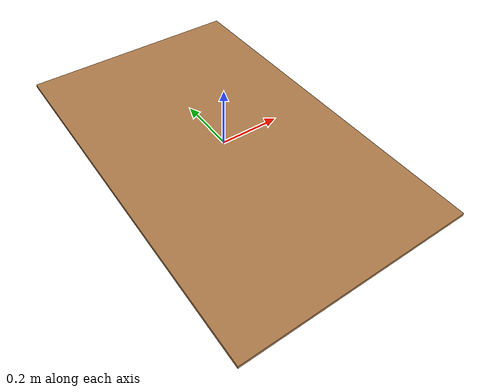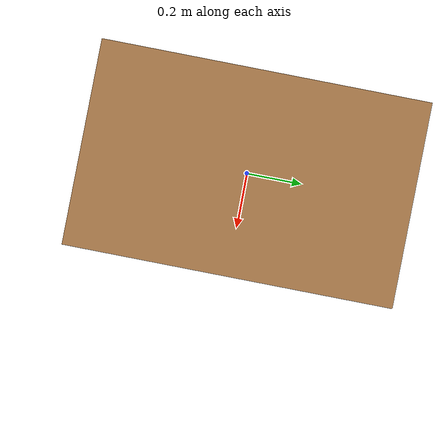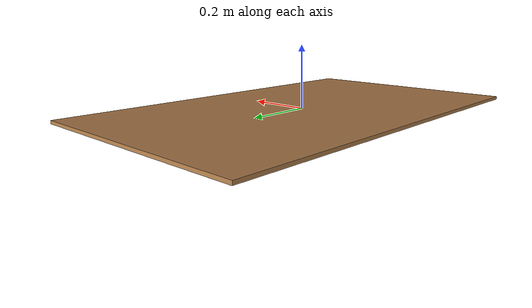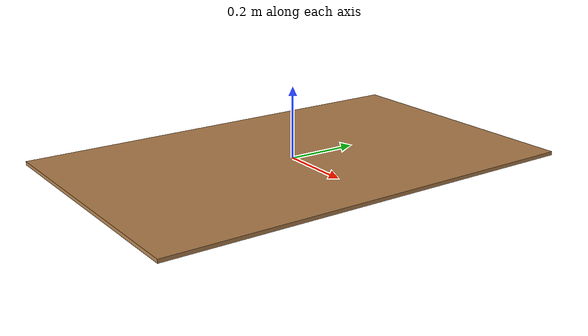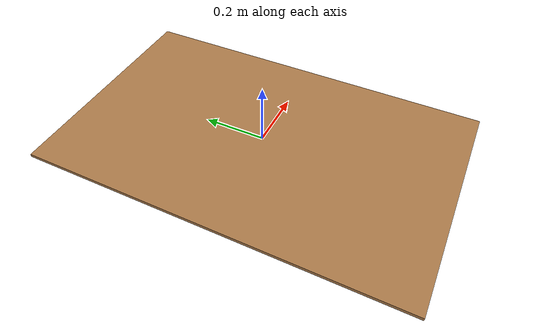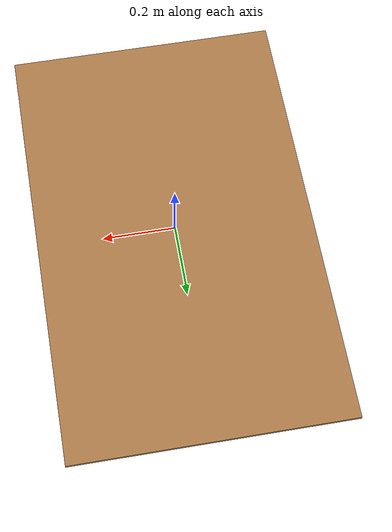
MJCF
<mujoco model="table">
    <compiler angle="radian" autolimits="true" />
    <option impratio="10" />
    <default>
        <default class="visual">
            <geom type="mesh" contype="0" conaffinity="0" group="2" />
        </default>
        <default class="collision">
            <geom type="mesh" group="3" />
        </default>
    </default>

    <asset>
        <texture name="wood" file="textures/wood4.png"/>
        <material name="table" rgba="1 1 1 1" reflectance="0" specular="0.0" texture="wood"
            shininess="0" />
    </asset>
    <worldbody>
        <body name="table">
            <geom size="0.38 0.61 0.005" class="visual" type="box"
                material="table" />
            <geom size="0.38 0.61 0.005" class="collision" friction= "1 1 1" type="box" />
        </body>
    </worldbody>
</mujoco>
